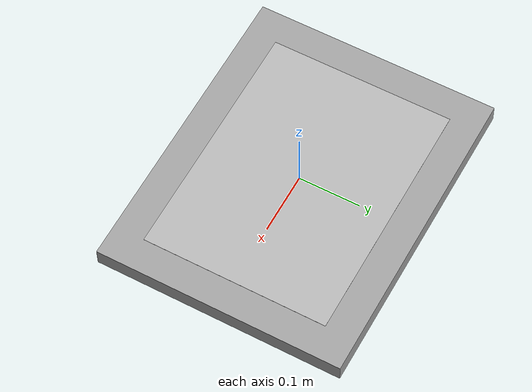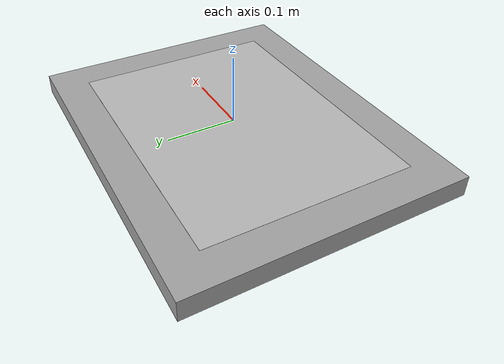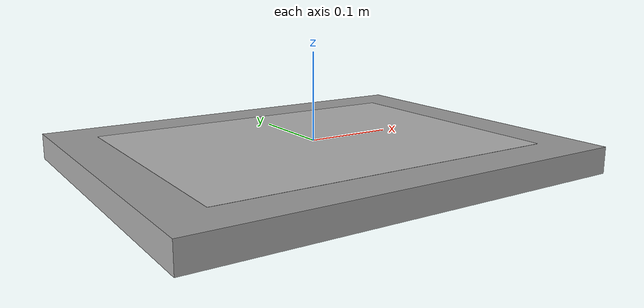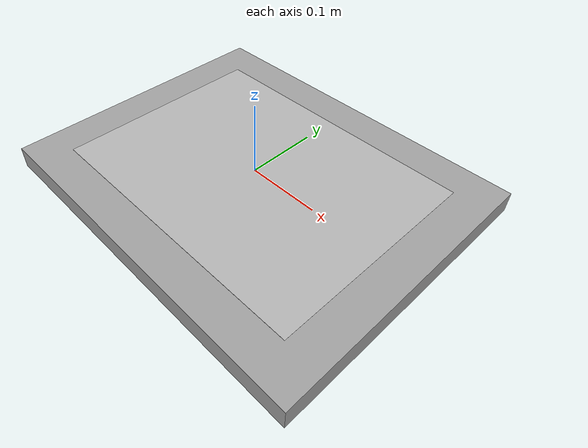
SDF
<?xml version="1.0"?>
<sdf version="1.5">
<model name="tft">
  <static>true</static>
  <link name="link">
    <pose>0 0 0 0 0 0</pose>
    <gravity>0</gravity>
    <visual name="visual">
      <geometry>
        <plane>
          <normal> 0 0 0 </normal>
          <size>0.4 0.3</size>
        </plane>
      </geometry>
      <material>
        <script>
          <uri>model://FNR/materials/scripts</uri>
          <uri>model://FNR/materials/textures</uri>
          <name>FNR/TFT/Stop</name>
        </script>
      </material>
    <plugin name="visualChange" filename="libvisualChange.so"/>
    </visual>
  </link>
  <link name="monitor">
    <pose>0 0 -0.015 0 0 0</pose>
    <gravity>0</gravity>
    <visual name="monitor">
      <geometry>
        <mesh>
            <uri>model://tft/monitor.dae</uri>
        </mesh>
      </geometry>
    </visual>
  </link>

</model>
</sdf>
